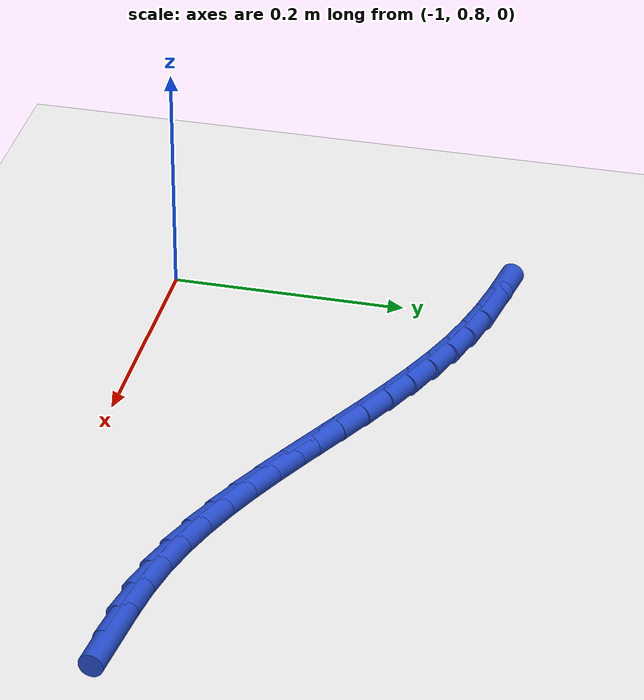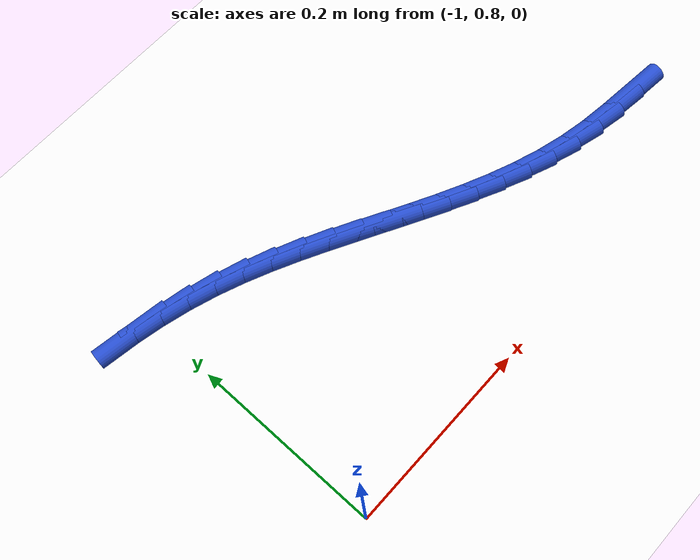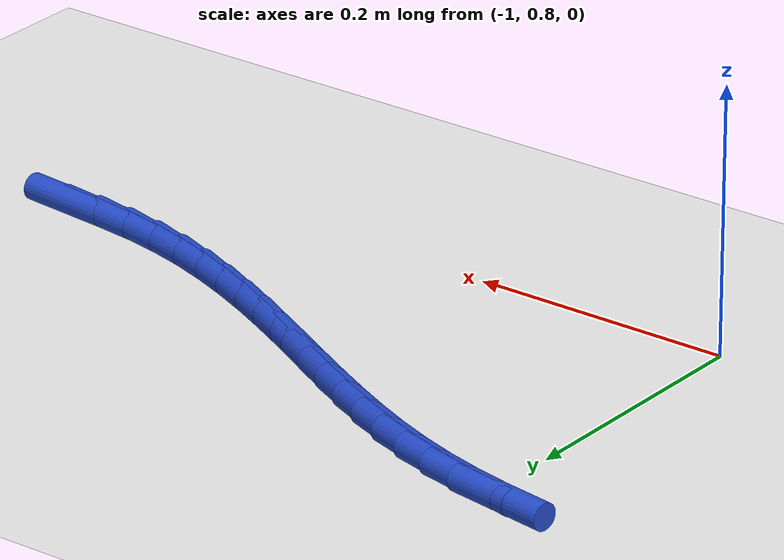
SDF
<sdf version="1.6">
 <world name="default">
  <model name="ground_plane">
   <static>1</static>
   <link name="link">
    <collision name="collision">
     <geometry><plane><normal>0 0 1</normal><size>100 100</size></plane></geometry>
     <surface><friction><ode><mu>100</mu><mu2>50</mu2></ode></friction></surface>
    </collision>
    <visual name="visual">
     <cast_shadows>0</cast_shadows>
     <geometry><plane><normal>0 0 1</normal><size>100 100</size></plane></geometry>
     <material>
      <script><uri>file://media/materials/scripts/gazebo.material</uri><name>Gazebo/WhiteGlow</name></script>
     </material>
    </visual>
   </link>
  </model>
  <model name="line">
   <link name="link_37">
    <pose>-0.5027596998715201 0.8853702263005647 0.01 0 1.57 -0.10267090377072248</pose>
    <collision name="collision">
     <geometry><cylinder><radius>0.01</radius><length>0.08</length></cylinder></geometry>
    </collision>
    <visual name="visual">
     <material>
      <script><name>Gazebo/Blue</name><uri>file://media/materials/scripts/gazebo.material</uri></script>
     </material>
     <geometry><cylinder><radius>0.01</radius><length>0.08</length></cylinder></geometry>
    </visual>
   </link>
   <link name="link_38">
    <pose>-0.5329325833548804 0.8884790348443625 0.01 0 1.57 -0.132633073866147</pose>
    <collision name="collision">
     <geometry><cylinder><radius>0.01</radius><length>0.08</length></cylinder></geometry>
    </collision>
    <visual name="visual">
     <material>
      <script><name>Gazebo/Blue</name><uri>file://media/materials/scripts/gazebo.material</uri></script>
     </material>
     <geometry><cylinder><radius>0.01</radius><length>0.08</length></cylinder></geometry>
    </visual>
   </link>
   <link name="link_39">
    <pose>-0.562918695047717 0.8924796716804503 0.01 0 1.57 -0.19741876478757558</pose>
    <collision name="collision">
     <geometry><cylinder><radius>0.01</radius><length>0.08</length></cylinder></geometry>
    </collision>
    <visual name="visual">
     <material>
      <script><name>Gazebo/Blue</name><uri>file://media/materials/scripts/gazebo.material</uri></script>
     </material>
     <geometry><cylinder><radius>0.01</radius><length>0.08</length></cylinder></geometry>
    </visual>
   </link>
   <link name="link_40">
    <pose>-0.5921563687883306 0.8983279120285812 0.01 0 1.57 -0.2677372783503881</pose>
    <collision name="collision">
     <geometry><cylinder><radius>0.01</radius><length>0.08</length></cylinder></geometry>
    </collision>
    <visual name="visual">
     <material>
      <script><name>Gazebo/Blue</name><uri>file://media/materials/scripts/gazebo.material</uri></script>
     </material>
     <geometry><cylinder><radius>0.01</radius><length>0.08</length></cylinder></geometry>
    </visual>
   </link>
   <link name="link_41">
    <pose>-0.6205577482249681 0.9061190812859766 0.01 0 1.57 -0.3297167541286263</pose>
    <collision name="collision">
     <geometry><cylinder><radius>0.01</radius><length>0.08</length></cylinder></geometry>
    </collision>
    <visual name="visual">
     <material>
      <script><name>Gazebo/Blue</name><uri>file://media/materials/scripts/gazebo.material</uri></script>
     </material>
     <geometry><cylinder><radius>0.01</radius><length>0.08</length></cylinder></geometry>
    </visual>
   </link>
   <link name="link_42">
    <pose>-0.648232585267635 0.915589643572206 0.01 0 1.57 -0.3824720242395838</pose>
    <collision name="collision">
     <geometry><cylinder><radius>0.01</radius><length>0.08</length></cylinder></geometry>
    </collision>
    <visual name="visual">
     <material>
      <script><name>Gazebo/Blue</name><uri>file://media/materials/scripts/gazebo.material</uri></script>
     </material>
     <geometry><cylinder><radius>0.01</radius><length>0.08</length></cylinder></geometry>
    </visual>
   </link>
   <link name="link_43">
    <pose>-0.6752912880754629 0.9264748712429024 0.01 0 1.57 -0.4255542360717503</pose>
    <collision name="collision">
     <geometry><cylinder><radius>0.01</radius><length>0.08</length></cylinder></geometry>
    </collision>
    <visual name="visual">
     <material>
      <script><name>Gazebo/Blue</name><uri>file://media/materials/scripts/gazebo.material</uri></script>
     </material>
     <geometry><cylinder><radius>0.01</radius><length>0.08</length></cylinder></geometry>
    </visual>
   </link>
   <link name="link_44">
    <pose>-0.7018442648075837 0.9385100366536999 0.01 0 1.57 -0.45878975750319156</pose>
    <collision name="collision">
     <geometry><cylinder><radius>0.01</radius><length>0.08</length></cylinder></geometry>
    </collision>
    <visual name="visual">
     <material>
      <script><name>Gazebo/Blue</name><uri>file://media/materials/scripts/gazebo.material</uri></script>
     </material>
     <geometry><cylinder><radius>0.01</radius><length>0.08</length></cylinder></geometry>
    </visual>
   </link>
   <link name="link_45">
    <pose>-0.7280019236231287 0.9514304121602307 0.01 0 1.57 -0.4821634026316077</pose>
    <collision name="collision">
     <geometry><cylinder><radius>0.01</radius><length>0.08</length></cylinder></geometry>
    </collision>
    <visual name="visual">
     <material>
      <script><name>Gazebo/Blue</name><uri>file://media/materials/scripts/gazebo.material</uri></script>
     </material>
     <geometry><cylinder><radius>0.01</radius><length>0.08</length></cylinder></geometry>
    </visual>
   </link>
   <link name="link_46">
    <pose>-0.7538746726812298 0.9649712701181287 0.01 0 1.57 -0.49572235111081114</pose>
    <collision name="collision">
     <geometry><cylinder><radius>0.01</radius><length>0.08</length></cylinder></geometry>
    </collision>
    <visual name="visual">
     <material>
      <script><name>Gazebo/Blue</name><uri>file://media/materials/scripts/gazebo.material</uri></script>
     </material>
     <geometry><cylinder><radius>0.01</radius><length>0.08</length></cylinder></geometry>
    </visual>
   </link>
   <link name="link_47">
    <pose>-0.7795729201410186 0.9788678828830268 0.01 0 1.57 -0.49950828175360495</pose>
    <collision name="collision">
     <geometry><cylinder><radius>0.01</radius><length>0.08</length></cylinder></geometry>
    </collision>
    <visual name="visual">
     <material>
      <script><name>Gazebo/Blue</name><uri>file://media/materials/scripts/gazebo.material</uri></script>
     </material>
     <geometry><cylinder><radius>0.01</radius><length>0.08</length></cylinder></geometry>
    </visual>
   </link>
   <link name="link_48">
    <pose>-0.8052070741616271 0.9928555228105586 0.01 0 1.57 -0.4935184887555524</pose>
    <collision name="collision">
     <geometry><cylinder><radius>0.01</radius><length>0.08</length></cylinder></geometry>
    </collision>
    <visual name="visual">
     <material>
      <script><name>Gazebo/Blue</name><uri>file://media/materials/scripts/gazebo.material</uri></script>
     </material>
     <geometry><cylinder><radius>0.01</radius><length>0.08</length></cylinder></geometry>
    </visual>
   </link>
   <link name="link_49">
    <pose>-0.8308875429021867 1.006669462256357 0.01 0 1.57 -0.47769484025326275</pose>
    <collision name="collision">
     <geometry><cylinder><radius>0.01</radius><length>0.08</length></cylinder></geometry>
    </collision>
    <visual name="visual">
     <material>
      <script><name>Gazebo/Blue</name><uri>file://media/materials/scripts/gazebo.material</uri></script>
     </material>
     <geometry><cylinder><radius>0.01</radius><length>0.08</length></cylinder></geometry>
    </visual>
   </link>
   <link name="link_50">
    <pose>-0.8567247345218288 1.0200449735760553 0.01 0 1.57 -0.45194037814710103</pose>
    <collision name="collision">
     <geometry><cylinder><radius>0.01</radius><length>0.08</length></cylinder></geometry>
    </collision>
    <visual name="visual">
     <material>
      <script><name>Gazebo/Blue</name><uri>file://media/materials/scripts/gazebo.material</uri></script>
     </material>
     <geometry><cylinder><radius>0.01</radius><length>0.08</length></cylinder></geometry>
    </visual>
   </link>
   <link name="link_51">
    <pose>-0.8828290571796858 1.032717329125287 0.01 0 1.57 -0.416165105256358</pose>
    <collision name="collision">
     <geometry><cylinder><radius>0.01</radius><length>0.08</length></cylinder></geometry>
    </collision>
    <visual name="visual">
     <material>
      <script><name>Gazebo/Blue</name><uri>file://media/materials/scripts/gazebo.material</uri></script>
     </material>
     <geometry><cylinder><radius>0.01</radius><length>0.08</length></cylinder></geometry>
    </visual>
   </link>
   <link name="link_52">
    <pose>-0.9093109190348889 1.0444218012596846 0.01 0 1.57 -0.37036303819420036</pose>
    <collision name="collision">
     <geometry><cylinder><radius>0.01</radius><length>0.08</length></cylinder></geometry>
    </collision>
    <visual name="visual">
     <material>
      <script><name>Gazebo/Blue</name><uri>file://media/materials/scripts/gazebo.material</uri></script>
     </material>
     <geometry><cylinder><radius>0.01</radius><length>0.08</length></cylinder></geometry>
    </visual>
   </link>
   <link name="link_53">
    <pose>-0.9362807282465697 1.0548936623348824 0.01 0 1.57 -0.315485280029026</pose>
    <collision name="collision">
     <geometry><cylinder><radius>0.01</radius><length>0.08</length></cylinder></geometry>
    </collision>
    <visual name="visual">
     <material>
      <script><name>Gazebo/Blue</name><uri>file://media/materials/scripts/gazebo.material</uri></script>
     </material>
     <geometry><cylinder><radius>0.01</radius><length>0.08</length></cylinder></geometry>
    </visual>
   </link>
   <link name="link_54">
    <pose>-0.9638365308373273 1.063887499743705 0.01 0 1.57 -0.2595835985764379</pose>
    <collision name="collision">
     <geometry><cylinder><radius>0.01</radius><length>0.08</length></cylinder></geometry>
    </collision>
    <visual name="visual">
     <material>
      <script><name>Gazebo/Blue</name><uri>file://media/materials/scripts/gazebo.material</uri></script>
     </material>
     <geometry><cylinder><radius>0.01</radius><length>0.08</length></cylinder></geometry>
    </visual>
   </link>
   <link name="link_55">
    <pose>-0.9919508728730868 1.07135398642812 0.01 0 1.57 -0.20711975091673546</pose>
    <collision name="collision">
     <geometry><cylinder><radius>0.01</radius><length>0.08</length></cylinder></geometry>
    </collision>
    <visual name="visual">
     <material>
      <script><name>Gazebo/Blue</name><uri>file://media/materials/scripts/gazebo.material</uri></script>
     </material>
     <geometry><cylinder><radius>0.01</radius><length>0.08</length></cylinder></geometry>
    </visual>
   </link>
   <link name="link_56">
    <pose>-1.0205232166164269 1.0773579840365548 0.01 0 1.57 -0.15795295898424394</pose>
    <collision name="collision">
     <geometry><cylinder><radius>0.01</radius><length>0.08</length></cylinder></geometry>
    </collision>
    <visual name="visual">
     <material>
      <script><name>Gazebo/Blue</name><uri>file://media/materials/scripts/gazebo.material</uri></script>
     </material>
     <geometry><cylinder><radius>0.01</radius><length>0.08</length></cylinder></geometry>
    </visual>
   </link>
  </model>
 </world>
</sdf>
